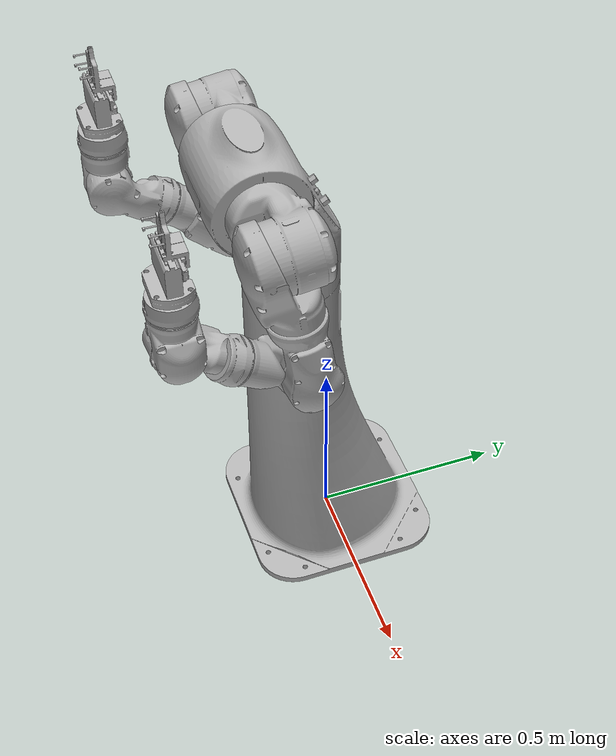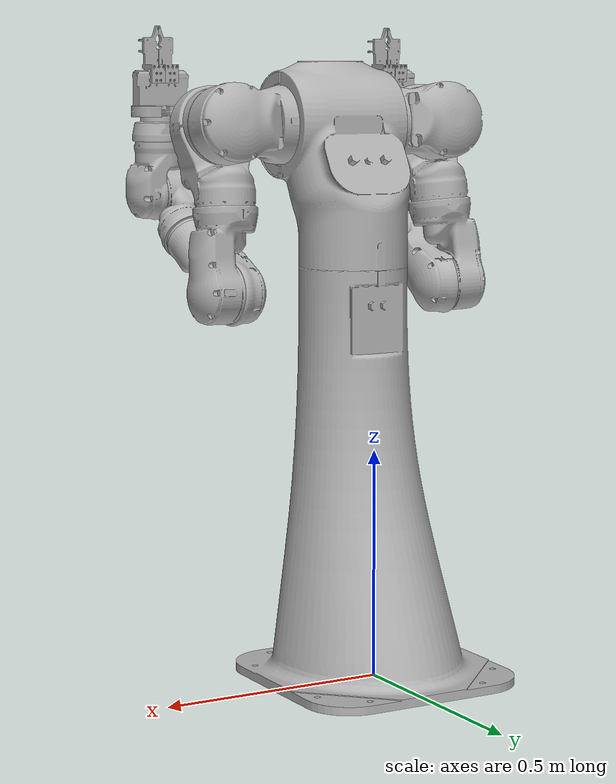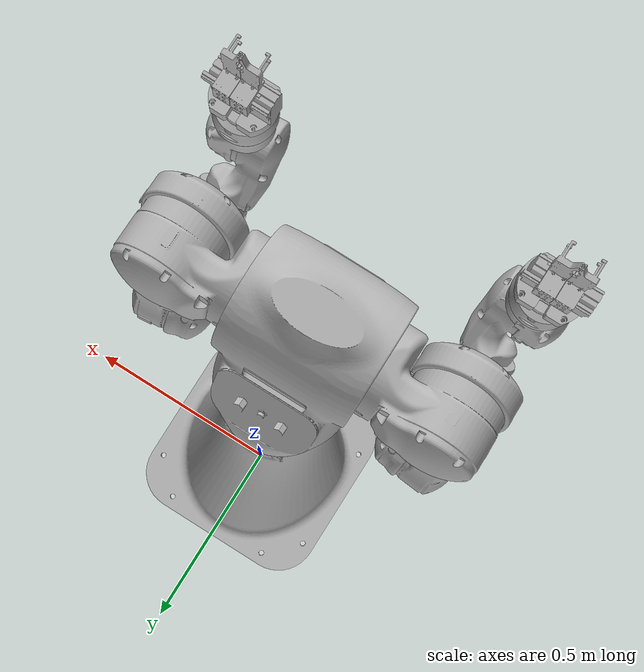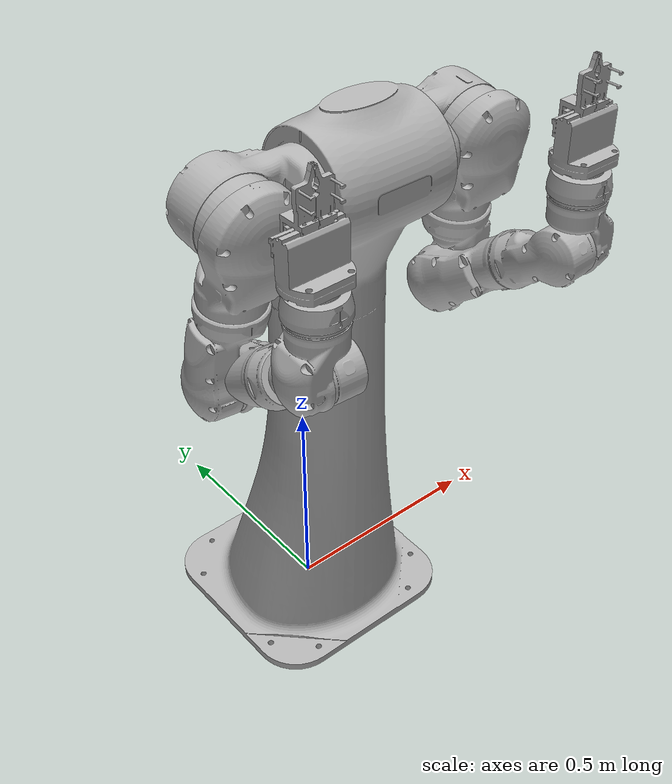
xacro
<?xml version="1.0" ?>
<robot name="csda10f_precision_model" xmlns:xacro="http://www.ros.org/wiki/xacro">

<xacro:include filename="$(find csda10f_precision_model_description)/urdf/materials.xacro" />
<xacro:include filename="$(find csda10f_precision_model_description)/urdf/csda10f_precision_model.trans" />
<xacro:include filename="$(find csda10f_precision_model_description)/urdf/csda10f_precision_model.gazebo" />
<link name="base_link">
  <inertial>
    <origin rpy="0 0 0" xyz="2.2433469729801996e-08 -0.05080457965626237 0.33381930788224"/>
    <mass value="181.30206575672864"/>
    <inertia ixx="13.450073" ixy="-0.0" ixz="1e-06" iyy="13.274199" iyz="1.404445" izz="2.922734"/>
  </inertial>
  <visual>
    <origin rpy="0 0 0" xyz="0 0 0"/>
    <geometry>
      <mesh filename="package://csda10f_precision_model_description/meshes/base_link.stl" scale="0.001 0.001 0.001"/>
    </geometry>
    <material name="silver"/>
  </visual>
  <collision>
    <origin rpy="0 0 0" xyz="0 0 0"/>
    <geometry>
      <mesh filename="package://csda10f_precision_model_description/meshes/base_link.stl" scale="0.001 0.001 0.001"/>
    </geometry>
  </collision>
</link>

<link name="SBASE_1">
  <inertial>
    <origin rpy="0 0 0" xyz="8.096157294561414e-09 -0.05522328590899421 0.2182019619316109"/>
    <mass value="60.457326411234085"/>
    <inertia ixx="1.176265" ixy="0.0" ixz="0.0" iyy="1.085087" iyz="0.275129" izz="0.630069"/>
  </inertial>
  <visual>
    <origin rpy="0 0 0" xyz="0.0 0.092509 -0.8935"/>
    <geometry>
      <mesh filename="package://csda10f_precision_model_description/meshes/SBASE_1.stl" scale="0.001 0.001 0.001"/>
    </geometry>
    <material name="silver"/>
  </visual>
  <collision>
    <origin rpy="0 0 0" xyz="0.0 0.092509 -0.8935"/>
    <geometry>
      <mesh filename="package://csda10f_precision_model_description/meshes/SBASE_1.stl" scale="0.001 0.001 0.001"/>
    </geometry>
  </collision>
</link>

<link name="S1_1">
  <inertial>
    <origin rpy="0 0 0" xyz="0.10958022689067523 0.020746595948014174 0.002601374363041753"/>
    <mass value="11.990565927774206"/>
    <inertia ixx="0.04229" ixy="-0.005344" ixz="-0.000672" iyy="0.067643" iyz="-8.3e-05" izz="0.068291"/>
  </inertial>
  <visual>
    <origin rpy="0 0 0" xyz="-0.123 0.192509 -1.2"/>
    <geometry>
      <mesh filename="package://csda10f_precision_model_description/meshes/S1_1.stl" scale="0.001 0.001 0.001"/>
    </geometry>
    <material name="silver"/>
  </visual>
  <collision>
    <origin rpy="0 0 0" xyz="-0.123 0.192509 -1.2"/>
    <geometry>
      <mesh filename="package://csda10f_precision_model_description/meshes/S1_1.stl" scale="0.001 0.001 0.001"/>
    </geometry>
  </collision>
</link>

<link name="L1_1">
  <inertial>
    <origin rpy="0 0 0" xyz="0.0024764405341893836 0.014067230579859952 -0.06622899736059429"/>
    <mass value="7.163278272082816"/>
    <inertia ixx="0.04823" ixy="-0.000603" ixz="0.000877" iyy="0.044685" iyz="0.015782" izz="0.026715"/>
  </inertial>
  <visual>
    <origin rpy="0 0 0" xyz="-0.265 0.237561 -1.194388"/>
    <geometry>
      <mesh filename="package://csda10f_precision_model_description/meshes/L1_1.stl" scale="0.001 0.001 0.001"/>
    </geometry>
    <material name="silver"/>
  </visual>
  <collision>
    <origin rpy="0 0 0" xyz="-0.265 0.237561 -1.194388"/>
    <geometry>
      <mesh filename="package://csda10f_precision_model_description/meshes/L1_1.stl" scale="0.001 0.001 0.001"/>
    </geometry>
  </collision>
</link>

<link name="E1_1">
  <inertial>
    <origin rpy="0 0 0" xyz="0.02563166397120198 0.016239483070428773 -0.11289951791422326"/>
    <mass value="6.994589067228431"/>
    <inertia ixx="0.044091" ixy="-0.000931" ixz="0.006796" iyy="0.044446" iyz="0.004322" izz="0.015181"/>
  </inertial>
  <visual>
    <origin rpy="0 0 0" xyz="-0.271413 0.170893 -1.026459"/>
    <geometry>
      <mesh filename="package://csda10f_precision_model_description/meshes/E1_1.stl" scale="0.001 0.001 0.001"/>
    </geometry>
    <material name="silver"/>
  </visual>
  <collision>
    <origin rpy="0 0 0" xyz="-0.271413 0.170893 -1.026459"/>
    <geometry>
      <mesh filename="package://csda10f_precision_model_description/meshes/E1_1.stl" scale="0.001 0.001 0.001"/>
    </geometry>
  </collision>
</link>

<link name="U1_1">
  <inertial>
    <origin rpy="0 0 0" xyz="-0.005285707583092103 -0.06554866067953771 0.04247939838914405"/>
    <mass value="5.11428801835745"/>
    <inertia ixx="0.029836" ixy="0.005805" ixz="-0.003932" iyy="0.016596" iyz="0.010061" izz="0.023857"/>
  </inertial>
  <visual>
    <origin rpy="0 0 0" xyz="-0.262779 0.1495 -0.842249"/>
    <geometry>
      <mesh filename="package://csda10f_precision_model_description/meshes/U1_1.stl" scale="0.001 0.001 0.001"/>
    </geometry>
    <material name="silver"/>
  </visual>
  <collision>
    <origin rpy="0 0 0" xyz="-0.262779 0.1495 -0.842249"/>
    <geometry>
      <mesh filename="package://csda10f_precision_model_description/meshes/U1_1.stl" scale="0.001 0.001 0.001"/>
    </geometry>
  </collision>
</link>

<link name="R1_1">
  <inertial>
    <origin rpy="0 0 0" xyz="-0.012106225254944258 -0.08699872198053743 0.05721125758696455"/>
    <mass value="4.526669338517219"/>
    <inertia ixx="0.022423" ixy="-0.001911" ixz="0.001249" iyy="0.01133" iyz="0.007529" izz="0.017871"/>
  </inertial>
  <visual>
    <origin rpy="0 0 0" xyz="-0.288139 0.308088 -0.949503"/>
    <geometry>
      <mesh filename="package://csda10f_precision_model_description/meshes/R1_1.stl" scale="0.001 0.001 0.001"/>
    </geometry>
    <material name="silver"/>
  </visual>
  <collision>
    <origin rpy="0 0 0" xyz="-0.288139 0.308088 -0.949503"/>
    <geometry>
      <mesh filename="package://csda10f_precision_model_description/meshes/R1_1.stl" scale="0.001 0.001 0.001"/>
    </geometry>
  </collision>
</link>

<link name="B1_1">
  <inertial>
    <origin rpy="0 0 0" xyz="0.004283949653296426 0.0003122402239437161 0.04774324430963883"/>
    <mass value="2.95336548278132"/>
    <inertia ixx="0.008702" ixy="-1e-05" ixz="0.002243" iyy="0.008907" iyz="0.000129" izz="0.004722"/>
  </inertial>
  <visual>
    <origin rpy="0 0 0" xyz="-0.311767 0.446441 -1.042138"/>
    <geometry>
      <mesh filename="package://csda10f_precision_model_description/meshes/B1_1.stl" scale="0.001 0.001 0.001"/>
    </geometry>
    <material name="silver"/>
  </visual>
  <collision>
    <origin rpy="0 0 0" xyz="-0.311767 0.446441 -1.042138"/>
    <geometry>
      <mesh filename="package://csda10f_precision_model_description/meshes/B1_1.stl" scale="0.001 0.001 0.001"/>
    </geometry>
  </collision>
</link>

<link name="T1_1">
  <inertial>
    <origin rpy="0 0 0" xyz="5.513778420174198e-05 0.00014597386289000314 0.02481872183091305"/>
    <mass value="1.32607221578546"/>
    <inertia ixx="0.001271" ixy="0.0" ixz="1e-06" iyy="0.001289" iyz="3e-06" izz="0.001933"/>
  </inertial>
  <visual>
    <origin rpy="0 0 0" xyz="-0.297053 0.446938 -1.160173"/>
    <geometry>
      <mesh filename="package://csda10f_precision_model_description/meshes/T1_1.stl" scale="0.001 0.001 0.001"/>
    </geometry>
    <material name="silver"/>
  </visual>
  <collision>
    <origin rpy="0 0 0" xyz="-0.297053 0.446938 -1.160173"/>
    <geometry>
      <mesh filename="package://csda10f_precision_model_description/meshes/T1_1.stl" scale="0.001 0.001 0.001"/>
    </geometry>
  </collision>
</link>

<link name="S2_1">
  <inertial>
    <origin rpy="0 0 0" xyz="-0.10958022828177219 0.020750832945751807 0.0025673577130338465"/>
    <mass value="11.990565927774206"/>
    <inertia ixx="0.04229" ixy="0.005346" ixz="0.00066" iyy="0.067642" iyz="-8.1e-05" izz="0.068291"/>
  </inertial>
  <visual>
    <origin rpy="0 0 0" xyz="0.123 0.192509 -1.2"/>
    <geometry>
      <mesh filename="package://csda10f_precision_model_description/meshes/S2_1.stl" scale="0.001 0.001 0.001"/>
    </geometry>
    <material name="silver"/>
  </visual>
  <collision>
    <origin rpy="0 0 0" xyz="0.123 0.192509 -1.2"/>
    <geometry>
      <mesh filename="package://csda10f_precision_model_description/meshes/S2_1.stl" scale="0.001 0.001 0.001"/>
    </geometry>
  </collision>
</link>

<link name="L2_1">
  <inertial>
    <origin rpy="0 0 0" xyz="-0.002470882958283682 0.014067255774551868 -0.0662291996356148"/>
    <mass value="7.163278272082816"/>
    <inertia ixx="0.048233" ixy="0.000578" ixz="-0.000835" iyy="0.044685" iyz="0.015783" izz="0.026712"/>
  </inertial>
  <visual>
    <origin rpy="0 0 0" xyz="0.265 0.237561 -1.194388"/>
    <geometry>
      <mesh filename="package://csda10f_precision_model_description/meshes/L2_1.stl" scale="0.001 0.001 0.001"/>
    </geometry>
    <material name="silver"/>
  </visual>
  <collision>
    <origin rpy="0 0 0" xyz="0.265 0.237561 -1.194388"/>
    <geometry>
      <mesh filename="package://csda10f_precision_model_description/meshes/L2_1.stl" scale="0.001 0.001 0.001"/>
    </geometry>
  </collision>
</link>

<link name="E2_1">
  <inertial>
    <origin rpy="0 0 0" xyz="-0.02563580558053885 0.016198275073866203 -0.11290449765348587"/>
    <mass value="6.994589067228431"/>
    <inertia ixx="0.044087" ixy="0.000909" ixz="-0.006804" iyy="0.044463" iyz="0.004269" izz="0.015168"/>
  </inertial>
  <visual>
    <origin rpy="0 0 0" xyz="0.271413 0.170893 -1.026459"/>
    <geometry>
      <mesh filename="package://csda10f_precision_model_description/meshes/E2_1.stl" scale="0.001 0.001 0.001"/>
    </geometry>
    <material name="silver"/>
  </visual>
  <collision>
    <origin rpy="0 0 0" xyz="0.271413 0.170893 -1.026459"/>
    <geometry>
      <mesh filename="package://csda10f_precision_model_description/meshes/E2_1.stl" scale="0.001 0.001 0.001"/>
    </geometry>
  </collision>
</link>

<link name="U2_1">
  <inertial>
    <origin rpy="0 0 0" xyz="0.005303516463993518 -0.0654430130876767 0.04263982289479462"/>
    <mass value="5.11428801835745"/>
    <inertia ixx="0.029839" ixy="-0.005794" ixz="0.003944" iyy="0.016615" iyz="0.010069" izz="0.023835"/>
  </inertial>
  <visual>
    <origin rpy="0 0 0" xyz="0.262779 0.1495 -0.842249"/>
    <geometry>
      <mesh filename="package://csda10f_precision_model_description/meshes/U2_1.stl" scale="0.001 0.001 0.001"/>
    </geometry>
    <material name="silver"/>
  </visual>
  <collision>
    <origin rpy="0 0 0" xyz="0.262779 0.1495 -0.842249"/>
    <geometry>
      <mesh filename="package://csda10f_precision_model_description/meshes/U2_1.stl" scale="0.001 0.001 0.001"/>
    </geometry>
  </collision>
</link>

<link name="R2_1">
  <inertial>
    <origin rpy="0 0 0" xyz="0.012107586495043843 -0.08698001123805554 0.057240727448463535"/>
    <mass value="4.526669338517219"/>
    <inertia ixx="0.022423" ixy="0.001909" ixz="-0.001254" iyy="0.01135" iyz="0.007538" izz="0.017852"/>
  </inertial>
  <visual>
    <origin rpy="0 0 0" xyz="0.288137 0.308074 -0.949523"/>
    <geometry>
      <mesh filename="package://csda10f_precision_model_description/meshes/R2_1.stl" scale="0.001 0.001 0.001"/>
    </geometry>
    <material name="silver"/>
  </visual>
  <collision>
    <origin rpy="0 0 0" xyz="0.288137 0.308074 -0.949523"/>
    <geometry>
      <mesh filename="package://csda10f_precision_model_description/meshes/R2_1.stl" scale="0.001 0.001 0.001"/>
    </geometry>
  </collision>
</link>

<link name="B2_1">
  <inertial>
    <origin rpy="0 0 0" xyz="-0.004270859650056247 0.0005244614670172898 0.04774294326565798"/>
    <mass value="2.95336548278132"/>
    <inertia ixx="0.008701" ixy="-0.0" ixz="-0.002244" iyy="0.008908" iyz="0.000115" izz="0.004722"/>
  </inertial>
  <visual>
    <origin rpy="0 0 0" xyz="0.311765 0.446428 -1.042158"/>
    <geometry>
      <mesh filename="package://csda10f_precision_model_description/meshes/B2_1.stl" scale="0.001 0.001 0.001"/>
    </geometry>
    <material name="silver"/>
  </visual>
  <collision>
    <origin rpy="0 0 0" xyz="0.311765 0.446428 -1.042158"/>
    <geometry>
      <mesh filename="package://csda10f_precision_model_description/meshes/B2_1.stl" scale="0.001 0.001 0.001"/>
    </geometry>
  </collision>
</link>

<link name="T2_1">
  <inertial>
    <origin rpy="0 0 0" xyz="-5.487369243661888e-05 0.00014641235658008345 0.024819128010264313"/>
    <mass value="1.32607221578546"/>
    <inertia ixx="0.001271" ixy="-0.0" ixz="-1e-06" iyy="0.001289" iyz="3e-06" izz="0.001933"/>
  </inertial>
  <visual>
    <origin rpy="0 0 0" xyz="0.297051 0.446925 -1.160193"/>
    <geometry>
      <mesh filename="package://csda10f_precision_model_description/meshes/T2_1.stl" scale="0.001 0.001 0.001"/>
    </geometry>
    <material name="silver"/>
  </visual>
  <collision>
    <origin rpy="0 0 0" xyz="0.297051 0.446925 -1.160193"/>
    <geometry>
      <mesh filename="package://csda10f_precision_model_description/meshes/T2_1.stl" scale="0.001 0.001 0.001"/>
    </geometry>
  </collision>
</link>

<link name="hand_1">
  <inertial>
    <origin rpy="0 0 0" xyz="-0.0015522933470878408 0.0006434450999144858 0.031105904550830843"/>
    <mass value="2.4978751024280967"/>
    <inertia ixx="0.00328" ixy="4e-06" ixz="0.000102" iyy="0.00502" iyz="-0.000282" izz="0.003921"/>
  </inertial>
  <visual>
    <origin rpy="0 0 0" xyz="0.297176 0.446727 -1.217193"/>
    <geometry>
      <mesh filename="package://csda10f_precision_model_description/meshes/hand_1.stl" scale="0.001 0.001 0.001"/>
    </geometry>
    <material name="silver"/>
  </visual>
  <collision>
    <origin rpy="0 0 0" xyz="0.297176 0.446727 -1.217193"/>
    <geometry>
      <mesh filename="package://csda10f_precision_model_description/meshes/hand_1.stl" scale="0.001 0.001 0.001"/>
    </geometry>
  </collision>
</link>

<link name="hand__1__1">
  <inertial>
    <origin rpy="0 0 0" xyz="-0.001408545353336954 0.0006610041949101642 0.03131293250758094"/>
    <mass value="2.4978751024280967"/>
    <inertia ixx="0.003281" ixy="2.3e-05" ixz="0.000101" iyy="0.00502" iyz="-0.000283" izz="0.00392"/>
  </inertial>
  <visual>
    <origin rpy="0 0 0" xyz="-0.297178 0.44674 -1.217172"/>
    <geometry>
      <mesh filename="package://csda10f_precision_model_description/meshes/hand__1__1.stl" scale="0.001 0.001 0.001"/>
    </geometry>
    <material name="silver"/>
  </visual>
  <collision>
    <origin rpy="0 0 0" xyz="-0.297178 0.44674 -1.217172"/>
    <geometry>
      <mesh filename="package://csda10f_precision_model_description/meshes/hand__1__1.stl" scale="0.001 0.001 0.001"/>
    </geometry>
  </collision>
</link>

<link name="MAHOLO_FINGER_R__Simplified__v3_1">
  <inertial>
    <origin rpy="0 0 0" xyz="-0.05334915960283948 0.01438645514534792 0.02643242837160753"/>
    <mass value="0.3929891910645346"/>
    <inertia ixx="0.000399" ixy="-0.0" ixz="1e-05" iyy="0.000341" iyz="0.000107" izz="0.00014"/>
  </inertial>
  <visual>
    <origin rpy="0 0 0" xyz="0.26053 0.450693 -1.309187"/>
    <geometry>
      <mesh filename="package://csda10f_precision_model_description/meshes/MAHOLO_FINGER_R__Simplified__v3_1.stl" scale="0.001 0.001 0.001"/>
    </geometry>
    <material name="silver"/>
  </visual>
  <collision>
    <origin rpy="0 0 0" xyz="0.26053 0.450693 -1.309187"/>
    <geometry>
      <mesh filename="package://csda10f_precision_model_description/meshes/MAHOLO_FINGER_R__Simplified__v3_1.stl" scale="0.001 0.001 0.001"/>
    </geometry>
  </collision>
</link>

<link name="MAHOLO_FINGER_L__Simplified__v6_1">
  <inertial>
    <origin rpy="0 0 0" xyz="0.053148434594437244 0.006160799630561098 0.026694362446108233"/>
    <mass value="0.39298919106453456"/>
    <inertia ixx="0.000397" ixy="3e-06" ixz="-9e-06" iyy="0.000341" iyz="0.000109" izz="0.000138"/>
  </inertial>
  <visual>
    <origin rpy="0 0 0" xyz="0.334143 0.442123 -1.308996"/>
    <geometry>
      <mesh filename="package://csda10f_precision_model_description/meshes/MAHOLO_FINGER_L__Simplified__v6_1.stl" scale="0.001 0.001 0.001"/>
    </geometry>
    <material name="silver"/>
  </visual>
  <collision>
    <origin rpy="0 0 0" xyz="0.334143 0.442123 -1.308996"/>
    <geometry>
      <mesh filename="package://csda10f_precision_model_description/meshes/MAHOLO_FINGER_L__Simplified__v6_1.stl" scale="0.001 0.001 0.001"/>
    </geometry>
  </collision>
</link>

<link name="MAHOLO_FINGER_R__Simplified__v3__1__1">
  <inertial>
    <origin rpy="0 0 0" xyz="-0.053062488533561436 0.015008163994905455 0.026663230482674605"/>
    <mass value="0.3929891910645346"/>
    <inertia ixx="0.000399" ixy="-0.0" ixz="1e-05" iyy="0.000341" iyz="0.000106" izz="0.00014"/>
  </inertial>
  <visual>
    <origin rpy="0 0 0" xyz="-0.334176 0.451136 -1.309207"/>
    <geometry>
      <mesh filename="package://csda10f_precision_model_description/meshes/MAHOLO_FINGER_R__Simplified__v3__1__1.stl" scale="0.001 0.001 0.001"/>
    </geometry>
    <material name="silver"/>
  </visual>
  <collision>
    <origin rpy="0 0 0" xyz="-0.334176 0.451136 -1.309207"/>
    <geometry>
      <mesh filename="package://csda10f_precision_model_description/meshes/MAHOLO_FINGER_R__Simplified__v3__1__1.stl" scale="0.001 0.001 0.001"/>
    </geometry>
  </collision>
</link>

<link name="MAHOLO_FINGER_L__Simplified__v6__1__1">
  <inertial>
    <origin rpy="0 0 0" xyz="0.053331881935138215 0.005538233961328964 0.026462235518623034"/>
    <mass value="0.39298919106453456"/>
    <inertia ixx="0.000397" ixy="3e-06" ixz="-9e-06" iyy="0.000341" iyz="0.00011" izz="0.000138"/>
  </inertial>
  <visual>
    <origin rpy="0 0 0" xyz="-0.260668 0.441706 -1.309336"/>
    <geometry>
      <mesh filename="package://csda10f_precision_model_description/meshes/MAHOLO_FINGER_L__Simplified__v6__1__1.stl" scale="0.001 0.001 0.001"/>
    </geometry>
    <material name="silver"/>
  </visual>
  <collision>
    <origin rpy="0 0 0" xyz="-0.260668 0.441706 -1.309336"/>
    <geometry>
      <mesh filename="package://csda10f_precision_model_description/meshes/MAHOLO_FINGER_L__Simplified__v6__1__1.stl" scale="0.001 0.001 0.001"/>
    </geometry>
  </collision>
</link>

<joint name="A1" type="revolute">
  <origin rpy="0 0 0" xyz="0.0 -0.092509 0.8935"/>
  <parent link="base_link"/>
  <child link="SBASE_1"/>
  <axis xyz="0.0 -0.0 -1.0"/>
  <limit effort="100" lower="-2.96706" upper="2.96706" velocity="100"/>
</joint>

<joint name="S1" type="revolute">
  <origin rpy="0 0 0" xyz="0.123 -0.1 0.3065"/>
  <parent link="SBASE_1"/>
  <child link="S1_1"/>
  <axis xyz="-1.0 0.0 0.0"/>
  <limit effort="100" lower="-3.141593" upper="3.141593" velocity="100"/>
</joint>

<joint name="L1" type="revolute">
  <origin rpy="0 0 0" xyz="0.142 -0.045052 -0.005612"/>
  <parent link="S1_1"/>
  <child link="L1_1"/>
  <axis xyz="0.0 -0.992332 -0.123601"/>
  <limit effort="100" lower="-1.919862" upper="1.919862" velocity="100"/>
</joint>

<joint name="E1" type="revolute">
  <origin rpy="0 0 0" xyz="0.006413 0.066668 -0.167929"/>
  <parent link="L1_1"/>
  <child link="E1_1"/>
  <axis xyz="0.036644 0.123518 -0.991665"/>
  <limit effort="100" lower="-2.96706" upper="2.96706" velocity="100"/>
</joint>

<joint name="U1" type="revolute">
  <origin rpy="0 0 0" xyz="-0.008634 0.021393 -0.18421"/>
  <parent link="E1_1"/>
  <child link="U1_1"/>
  <axis xyz="-0.994387 -0.094051 -0.048459"/>
  <limit effort="100" lower="-2.356194" upper="2.356194" velocity="100"/>
</joint>

<joint name="R1" type="revolute">
  <origin rpy="0 0 0" xyz="0.02536 -0.158588 0.107254"/>
  <parent link="U1_1"/>
  <child link="R1_1"/>
  <axis xyz="0.051674 -0.831405 0.553259"/>
  <limit effort="100" lower="-3.141593" upper="3.141593" velocity="100"/>
</joint>

<joint name="B1" type="revolute">
  <origin rpy="0 0 0" xyz="0.023628 -0.138353 0.092635"/>
  <parent link="R1_1"/>
  <child link="B1_1"/>
  <axis xyz="0.998169 0.060443 -0.002399"/>
  <limit effort="100" lower="-1.919862" upper="1.919862" velocity="100"/>
</joint>

<joint name="T1" type="revolute">
  <origin rpy="0 0 0" xyz="-0.014714 -0.000497 0.118035"/>
  <parent link="B1_1"/>
  <child link="T1_1"/>
  <axis xyz="0.002193 0.003472 0.999992"/>
  <limit effort="100" lower="-3.141593" upper="3.141593" velocity="100"/>
</joint>

<joint name="S2" type="revolute">
  <origin rpy="0 0 0" xyz="-0.123 -0.1 0.3065"/>
  <parent link="SBASE_1"/>
  <child link="S2_1"/>
  <axis xyz="1.0 -0.0 0.0"/>
  <limit effort="100" lower="-3.141593" upper="3.141593" velocity="100"/>
</joint>

<joint name="L2" type="revolute">
  <origin rpy="0 0 0" xyz="-0.142 -0.045052 -0.005612"/>
  <parent link="S2_1"/>
  <child link="L2_1"/>
  <axis xyz="-0.0 -0.992332 -0.123601"/>
  <limit effort="100" lower="-1.919862" upper="1.919862" velocity="100"/>
</joint>

<joint name="E2" type="revolute">
  <origin rpy="0 0 0" xyz="-0.006413 0.066668 -0.167929"/>
  <parent link="L2_1"/>
  <child link="E2_1"/>
  <axis xyz="-0.036644 0.123518 -0.991665"/>
  <limit effort="100" lower="-2.96706" upper="2.96706" velocity="100"/>
</joint>

<joint name="U2" type="revolute">
  <origin rpy="0 0 0" xyz="0.008634 0.021393 -0.18421"/>
  <parent link="E2_1"/>
  <child link="U2_1"/>
  <axis xyz="0.994387 -0.094051 -0.048459"/>
  <limit effort="100" lower="-2.356194" upper="2.356194" velocity="100"/>
</joint>

<joint name="R2" type="revolute">
  <origin rpy="0 0 0" xyz="-0.025358 -0.158574 0.107274"/>
  <parent link="U2_1"/>
  <child link="R2_1"/>
  <axis xyz="-0.051674 -0.831405 0.553259"/>
  <limit effort="100" lower="-3.141593" upper="3.141593" velocity="100"/>
</joint>

<joint name="B2" type="revolute">
  <origin rpy="0 0 0" xyz="-0.023628 -0.138354 0.092635"/>
  <parent link="R2_1"/>
  <child link="B2_1"/>
  <axis xyz="-0.998169 0.060443 -0.002399"/>
  <limit effort="100" lower="-1.919862" upper="1.919862" velocity="100"/>
</joint>

<joint name="T2" type="continuous">
  <origin rpy="0 0 0" xyz="0.014714 -0.000497 0.118035"/>
  <parent link="B2_1"/>
  <child link="T2_1"/>
  <axis xyz="-0.002193 0.003472 0.999992"/>
</joint>

<joint name="FixR1" type="fixed">
  <origin rpy="0 0 0" xyz="-0.000125 0.000198 0.057"/>
  <parent link="T2_1"/>
  <child link="hand_1"/>
</joint>

<joint name="FixR2" type="fixed">
  <origin rpy="0 0 0" xyz="0.000125 0.000198 0.056999"/>
  <parent link="T1_1"/>
  <child link="hand__1__1"/>
</joint>

<joint name="R1F1" type="prismatic">
  <origin rpy="0 0 0" xyz="0.036646 -0.003966 0.091994"/>
  <parent link="hand_1"/>
  <child link="MAHOLO_FINGER_R__Simplified__v3_1"/>
  <axis xyz="0.999981 0.005843 0.002173"/>
  <limit effort="100" lower="-0.024" upper="0.0" velocity="100"/>
</joint>

<joint name="R1F2" type="prismatic">
  <origin rpy="0 0 0" xyz="-0.036967 0.004604 0.091803"/>
  <parent link="hand_1"/>
  <child link="MAHOLO_FINGER_L__Simplified__v6_1"/>
  <axis xyz="-0.999981 -0.005843 -0.002173"/>
  <limit effort="100" lower="-0.024" upper="0.0" velocity="100"/>
</joint>

<joint name="R2F1" type="prismatic">
  <origin rpy="0 0 0" xyz="0.036998 -0.004396 0.092035"/>
  <parent link="hand__1__1"/>
  <child link="MAHOLO_FINGER_R__Simplified__v3__1__1"/>
  <axis xyz="0.999981 -0.005843 -0.002173"/>
  <limit effort="100" lower="-0.024" upper="0.0" velocity="100"/>
</joint>

<joint name="R2F2" type="prismatic">
  <origin rpy="0 0 0" xyz="-0.03651 0.005034 0.092164"/>
  <parent link="hand__1__1"/>
  <child link="MAHOLO_FINGER_L__Simplified__v6__1__1"/>
  <axis xyz="-0.999981 0.005843 0.002173"/>
  <limit effort="100" lower="-0.024" upper="0.0" velocity="100"/>
</joint>

</robot>

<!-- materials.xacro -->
<robot name="csda10f_precision_model" xmlns:xacro="http://www.ros.org/wiki/xacro" >

<material name="silver">
  <color rgba="0.700 0.700 0.700 1.000"/>
</material>

</robot>

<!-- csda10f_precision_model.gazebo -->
<robot name="csda10f_precision_model" xmlns:xacro="http://www.ros.org/wiki/xacro" >

<xacro:property name="body_color" value="Gazebo/Silver" />

<gazebo>
  <plugin filename="libgazebo_ros_control.so" name="control"/>
</gazebo>
<gazebo reference="base_link">
  <material>${body_color}</material>
  <mu1>0.2</mu1>
  <mu2>0.2</mu2>
  <selfCollide>true</selfCollide>
  <gravity>true</gravity>
</gazebo>

<gazebo reference="SBASE_1">
  <material>${body_color}</material>
  <mu1>0.2</mu1>
  <mu2>0.2</mu2>
  <selfCollide>true</selfCollide>
</gazebo>

<gazebo reference="S1_1">
  <material>${body_color}</material>
  <mu1>0.2</mu1>
  <mu2>0.2</mu2>
  <selfCollide>true</selfCollide>
</gazebo>

<gazebo reference="L1_1">
  <material>${body_color}</material>
  <mu1>0.2</mu1>
  <mu2>0.2</mu2>
  <selfCollide>true</selfCollide>
</gazebo>

<gazebo reference="E1_1">
  <material>${body_color}</material>
  <mu1>0.2</mu1>
  <mu2>0.2</mu2>
  <selfCollide>true</selfCollide>
</gazebo>

<gazebo reference="U1_1">
  <material>${body_color}</material>
  <mu1>0.2</mu1>
  <mu2>0.2</mu2>
  <selfCollide>true</selfCollide>
</gazebo>

<gazebo reference="R1_1">
  <material>${body_color}</material>
  <mu1>0.2</mu1>
  <mu2>0.2</mu2>
  <selfCollide>true</selfCollide>
</gazebo>

<gazebo reference="B1_1">
  <material>${body_color}</material>
  <mu1>0.2</mu1>
  <mu2>0.2</mu2>
  <selfCollide>true</selfCollide>
</gazebo>

<gazebo reference="T1_1">
  <material>${body_color}</material>
  <mu1>0.2</mu1>
  <mu2>0.2</mu2>
  <selfCollide>true</selfCollide>
</gazebo>

<gazebo reference="S2_1">
  <material>${body_color}</material>
  <mu1>0.2</mu1>
  <mu2>0.2</mu2>
  <selfCollide>true</selfCollide>
</gazebo>

<gazebo reference="L2_1">
  <material>${body_color}</material>
  <mu1>0.2</mu1>
  <mu2>0.2</mu2>
  <selfCollide>true</selfCollide>
</gazebo>

<gazebo reference="E2_1">
  <material>${body_color}</material>
  <mu1>0.2</mu1>
  <mu2>0.2</mu2>
  <selfCollide>true</selfCollide>
</gazebo>

<gazebo reference="U2_1">
  <material>${body_color}</material>
  <mu1>0.2</mu1>
  <mu2>0.2</mu2>
  <selfCollide>true</selfCollide>
</gazebo>

<gazebo reference="R2_1">
  <material>${body_color}</material>
  <mu1>0.2</mu1>
  <mu2>0.2</mu2>
  <selfCollide>true</selfCollide>
</gazebo>

<gazebo reference="B2_1">
  <material>${body_color}</material>
  <mu1>0.2</mu1>
  <mu2>0.2</mu2>
  <selfCollide>true</selfCollide>
</gazebo>

<gazebo reference="T2_1">
  <material>${body_color}</material>
  <mu1>0.2</mu1>
  <mu2>0.2</mu2>
  <selfCollide>true</selfCollide>
</gazebo>

<gazebo reference="hand_1">
  <material>${body_color}</material>
  <mu1>0.2</mu1>
  <mu2>0.2</mu2>
  <selfCollide>true</selfCollide>
</gazebo>

<gazebo reference="hand__1__1">
  <material>${body_color}</material>
  <mu1>0.2</mu1>
  <mu2>0.2</mu2>
  <selfCollide>true</selfCollide>
</gazebo>

<gazebo reference="MAHOLO_FINGER_R__Simplified__v3_1">
  <material>${body_color}</material>
  <mu1>0.2</mu1>
  <mu2>0.2</mu2>
  <selfCollide>true</selfCollide>
</gazebo>

<gazebo reference="MAHOLO_FINGER_L__Simplified__v6_1">
  <material>${body_color}</material>
  <mu1>0.2</mu1>
  <mu2>0.2</mu2>
  <selfCollide>true</selfCollide>
</gazebo>

<gazebo reference="MAHOLO_FINGER_R__Simplified__v3__1__1">
  <material>${body_color}</material>
  <mu1>0.2</mu1>
  <mu2>0.2</mu2>
  <selfCollide>true</selfCollide>
</gazebo>

<gazebo reference="MAHOLO_FINGER_L__Simplified__v6__1__1">
  <material>${body_color}</material>
  <mu1>0.2</mu1>
  <mu2>0.2</mu2>
  <selfCollide>true</selfCollide>
</gazebo>

</robot>
